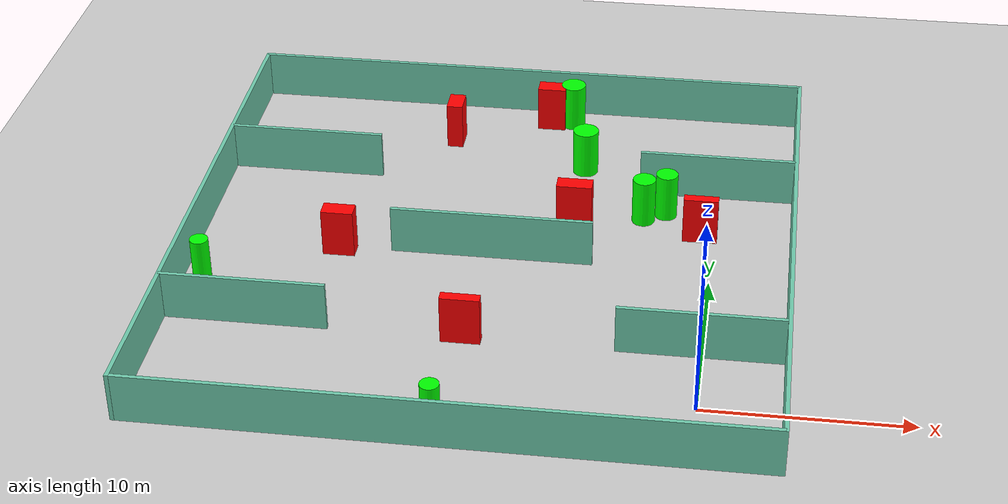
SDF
<sdf version="1.7">
 <world name="default">
  <light name="sun" type="directional">
   <pose>0 0 10 0 -0 0</pose>
   <diffuse>0.8 0.8 0.8 1</diffuse>
   <specular>0.2 0.2 0.2 1</specular>
   <attenuation>
    <range>1000</range>
    <constant>0.9</constant>
    <linear>0.01</linear>
    <quadratic>0.001</quadratic>
   </attenuation>
   <direction>-0.5 0.1 -0.9</direction>
   <spot><inner_angle>0</inner_angle><outer_angle>0</outer_angle><falloff>0</falloff></spot>
  </light>
  <model name="ground_plane">
   <static>1</static>
   <link name="link">
    <collision name="collision">
     <geometry><plane><normal>0 0 1</normal><size>100 100</size></plane></geometry>
     <surface>
      <contact><collide_bitmask>65535</collide_bitmask></contact>
      <friction><ode><mu>100</mu><mu2>50</mu2></ode></friction>
     </surface>
    </collision>
    <visual name="visual">
     <cast_shadows>0</cast_shadows>
     <geometry><plane><normal>0 0 1</normal><size>100 100</size></plane></geometry>
     <material>
      <script><uri>file://media/materials/scripts/gazebo.material</uri><name>Gazebo/Grey</name></script>
     </material>
    </visual>
   </link>
  </model>
  <gravity>0 0 -9.8</gravity>
  <magnetic_field>6e-06 2.3e-05 -4.2e-05</magnetic_field>
  <atmosphere type="adiabatic"/>
  <physics type="ode">
   <max_step_size>0.001</max_step_size>
   <real_time_factor>1</real_time_factor>
   <real_time_update_rate>1000</real_time_update_rate>
  </physics>
  <scene><ambient>0.4 0.4 0.4 1</ambient><background>0.7 0.7 0.7 1</background><shadows>1</shadows></scene>
  <spherical_coordinates>
   <surface_model>EARTH_WGS84</surface_model>
   <latitude_deg>0</latitude_deg>
   <longitude_deg>0</longitude_deg>
   <elevation>0</elevation>
   <heading_deg>0</heading_deg>
  </spherical_coordinates>
  <model name="my_base_walls">
   <link name="Wall_10">
    <collision name="Wall_10_Collision">
     <geometry><box><size>8.2 0.2 2.5</size></box></geometry>
     <pose>0 0 1.25 0 -0 0</pose>
    </collision>
    <visual name="Wall_10_Visual">
     <pose>0 0 1.25 0 -0 0</pose>
     <geometry><box><size>8.2 0.2 2.5</size></box></geometry>
     <material>
      <script><uri>file://media/materials/scripts/gazebo.material</uri><name>Gazebo/Grey</name></script>
      <ambient>0.435294 0.796078 0.67451 1</ambient>
     </material>
     <meta><layer>0</layer></meta>
    </visual>
    <pose>-11 -7 0 0 -0 0</pose>
   </link>
   <link name="Wall_12">
    <collision name="Wall_12_Collision">
     <geometry><box><size>8.2 0.2 2.5</size></box></geometry>
     <pose>0 0 1.25 0 -0 0</pose>
    </collision>
    <visual name="Wall_12_Visual">
     <pose>0 0 1.25 0 -0 0</pose>
     <geometry><box><size>8.2 0.2 2.5</size></box></geometry>
     <material>
      <script><uri>file://media/materials/scripts/gazebo.material</uri><name>Gazebo/Grey</name></script>
      <ambient>0.435294 0.796078 0.67451 1</ambient>
     </material>
     <meta><layer>0</layer></meta>
    </visual>
    <pose>-11 7 0 0 -0 0</pose>
   </link>
   <link name="Wall_14">
    <collision name="Wall_14_Collision">
     <geometry><box><size>8.2 0.2 2.5</size></box></geometry>
     <pose>0 0 1.25 0 -0 0</pose>
    </collision>
    <visual name="Wall_14_Visual">
     <pose>0 0 1.25 0 -0 0</pose>
     <geometry><box><size>8.2 0.2 2.5</size></box></geometry>
     <material>
      <script><uri>file://media/materials/scripts/gazebo.material</uri><name>Gazebo/Grey</name></script>
      <ambient>0.435294 0.796078 0.67451 1</ambient>
     </material>
     <meta><layer>0</layer></meta>
    </visual>
    <pose>11 7 0 0 -0 3.14159</pose>
   </link>
   <link name="Wall_16">
    <collision name="Wall_16_Collision">
     <geometry><box><size>10.2 0.2 2.5</size></box></geometry>
     <pose>0 0 1.25 0 -0 0</pose>
    </collision>
    <visual name="Wall_16_Visual">
     <pose>0 0 1.25 0 -0 0</pose>
     <geometry><box><size>10.2 0.2 2.5</size></box></geometry>
     <material>
      <script><uri>file://media/materials/scripts/gazebo.material</uri><name>Gazebo/Grey</name></script>
      <ambient>0.435294 0.796078 0.67451 1</ambient>
     </material>
     <meta><layer>0</layer></meta>
    </visual>
    <pose>0 0 0 0 -0 3.14159</pose>
   </link>
   <link name="Wall_2">
    <collision name="Wall_2_Collision">
     <geometry><box><size>30.2 0.2 2.5</size></box></geometry>
     <pose>0 0 1.25 0 -0 0</pose>
    </collision>
    <visual name="Wall_2_Visual">
     <pose>0 0 1.25 0 -0 0</pose>
     <geometry><box><size>30.2 0.2 2.5</size></box></geometry>
     <material>
      <script><uri>file://media/materials/scripts/gazebo.material</uri><name>Gazebo/Grey</name></script>
      <ambient>0.435294 0.796078 0.67451 1</ambient>
     </material>
     <meta><layer>0</layer></meta>
    </visual>
    <pose>0 -15 0 0 -0 3.14159</pose>
   </link>
   <link name="Wall_3">
    <collision name="Wall_3_Collision">
     <geometry><box><size>30.2 0.2 2.5</size></box></geometry>
     <pose>0 0 1.25 0 -0 0</pose>
    </collision>
    <visual name="Wall_3_Visual">
     <pose>0 0 1.25 0 -0 0</pose>
     <geometry><box><size>30.2 0.2 2.5</size></box></geometry>
     <material>
      <script><uri>file://media/materials/scripts/gazebo.material</uri><name>Gazebo/Grey</name></script>
      <ambient>0.435294 0.796078 0.67451 1</ambient>
     </material>
     <meta><layer>0</layer></meta>
    </visual>
    <pose>-15 0 0 0 -0 1.5708</pose>
   </link>
   <link name="Wall_4">
    <collision name="Wall_4_Collision">
     <geometry><box><size>30.2 0.2 2.5</size></box></geometry>
     <pose>0 0 1.25 0 -0 0</pose>
    </collision>
    <visual name="Wall_4_Visual">
     <pose>0 0 1.25 0 -0 0</pose>
     <geometry><box><size>30.2 0.2 2.5</size></box></geometry>
     <material>
      <script><uri>file://media/materials/scripts/gazebo.material</uri><name>Gazebo/Grey</name></script>
      <ambient>0.435294 0.796078 0.67451 1</ambient>
     </material>
     <meta><layer>0</layer></meta>
    </visual>
    <pose>0 15 0 0 -0 0</pose>
   </link>
   <link name="Wall_6">
    <collision name="Wall_6_Collision">
     <geometry><box><size>30.2 0.2 2.5</size></box></geometry>
     <pose>0 0 1.25 0 -0 0</pose>
    </collision>
    <visual name="Wall_6_Visual">
     <pose>0 0 1.25 0 -0 0</pose>
     <geometry><box><size>30.2 0.2 2.5</size></box></geometry>
     <material>
      <script><uri>file://media/materials/scripts/gazebo.material</uri><name>Gazebo/Grey</name></script>
      <ambient>0.435294 0.796078 0.67451 1</ambient>
     </material>
     <meta><layer>0</layer></meta>
    </visual>
    <pose>15 0 0 0 -0 1.5708</pose>
   </link>
   <link name="Wall_8">
    <collision name="Wall_8_Collision">
     <geometry><box><size>8.2 0.2 2.5</size></box></geometry>
     <pose>0 0 1.25 0 -0 0</pose>
    </collision>
    <visual name="Wall_8_Visual">
     <pose>0 0 1.25 0 -0 0</pose>
     <geometry><box><size>8.2 0.2 2.5</size></box></geometry>
     <material>
      <script><uri>file://media/materials/scripts/gazebo.material</uri><name>Gazebo/Grey</name></script>
      <ambient>0.435294 0.796078 0.67451 1</ambient>
     </material>
     <meta><layer>0</layer></meta>
    </visual>
    <pose>11 -7 0 0 -0 3.14159</pose>
   </link>
   <static>1</static>
   <pose>-11 11 0 0 -0 0</pose>
  </model>
  <model name="cylinder1">
   <static>1</static>
   <link name="link">
    <inertial>
     <mass>1</mass>
     <inertia><ixx>0.5</ixx><ixy>0</ixy><ixz>0</ixz><iyy>0.5</iyy><iyz>0</iyz><izz>1</izz></inertia>
    </inertial>
    <collision name="collision">
     <geometry><cylinder><radius>0.4600609774964405</radius><length>2.5</length></cylinder></geometry>
    </collision>
    <visual name="visual">
     <geometry><cylinder><radius>0.4600609774964405</radius><length>2.5</length></cylinder></geometry>
     <material>
      <ambient>0 1 0 1</ambient>
      <diffuse>0 1 0 1</diffuse>
      <specular>0.1 0.1 0.1 1</specular>
      <emissive>0 0 0 0</emissive>
     </material>
    </visual>
   </link>
   <pose>-11.701661170635157 -2.804720398645942 1.25 0 0 0</pose>
  </model>
  <model name="cylinder2">
   <static>1</static>
   <link name="link">
    <inertial>
     <mass>1</mass>
     <inertia><ixx>0.5</ixx><ixy>0</ixy><ixz>0</ixz><iyy>0.5</iyy><iyz>0</iyz><izz>1</izz></inertia>
    </inertial>
    <collision name="collision">
     <geometry><cylinder><radius>0.5901187204789227</radius><length>2.5</length></cylinder></geometry>
    </collision>
    <visual name="visual">
     <geometry><cylinder><radius>0.5901187204789227</radius><length>2.5</length></cylinder></geometry>
     <material>
      <ambient>0 1 0 1</ambient>
      <diffuse>0 1 0 1</diffuse>
      <specular>0.1 0.1 0.1 1</specular>
      <emissive>0 0 0 0</emissive>
     </material>
    </visual>
   </link>
   <pose>-3.6976863530265334 15.328659530621728 1.25 0 0 0</pose>
  </model>
  <model name="cylinder3">
   <static>1</static>
   <link name="link">
    <inertial>
     <mass>1</mass>
     <inertia><ixx>0.5</ixx><ixy>0</ixy><ixz>0</ixz><iyy>0.5</iyy><iyz>0</iyz><izz>1</izz></inertia>
    </inertial>
    <collision name="collision">
     <geometry><cylinder><radius>0.46068661515458764</radius><length>2.5</length></cylinder></geometry>
    </collision>
    <visual name="visual">
     <geometry><cylinder><radius>0.46068661515458764</radius><length>2.5</length></cylinder></geometry>
     <material>
      <ambient>0 1 0 1</ambient>
      <diffuse>0 1 0 1</diffuse>
      <specular>0.1 0.1 0.1 1</specular>
      <emissive>0 0 0 0</emissive>
     </material>
    </visual>
   </link>
   <pose>-24.85203379269017 7.0512928892012 1.25 0 0 0</pose>
  </model>
  <model name="cylinder4">
   <static>1</static>
   <link name="link">
    <inertial>
     <mass>1</mass>
     <inertia><ixx>0.5</ixx><ixy>0</ixy><ixz>0</ixz><iyy>0.5</iyy><iyz>0</iyz><izz>1</izz></inertia>
    </inertial>
    <collision name="collision">
     <geometry><cylinder><radius>0.653735557014797</radius><length>2.5</length></cylinder></geometry>
    </collision>
    <visual name="visual">
     <geometry><cylinder><radius>0.653735557014797</radius><length>2.5</length></cylinder></geometry>
     <material>
      <ambient>0 1 0 1</ambient>
      <diffuse>0 1 0 1</diffuse>
      <specular>0.1 0.1 0.1 1</specular>
      <emissive>0 0 0 0</emissive>
     </material>
    </visual>
   </link>
   <pose>-8.384436257905575 24.650759449493872 1.25 0 0 0</pose>
  </model>
  <model name="cylinder5">
   <static>1</static>
   <link name="link">
    <inertial>
     <mass>1</mass>
     <inertia><ixx>0.5</ixx><ixy>0</ixy><ixz>0</ixz><iyy>0.5</iyy><iyz>0</iyz><izz>1</izz></inertia>
    </inertial>
    <collision name="collision">
     <geometry><cylinder><radius>0.5666415830246572</radius><length>2.5</length></cylinder></geometry>
    </collision>
    <visual name="visual">
     <geometry><cylinder><radius>0.5666415830246572</radius><length>2.5</length></cylinder></geometry>
     <material>
      <ambient>0 1 0 1</ambient>
      <diffuse>0 1 0 1</diffuse>
      <specular>0.1 0.1 0.1 1</specular>
      <emissive>0 0 0 0</emissive>
     </material>
    </visual>
   </link>
   <pose>-2.572954634749319 15.970621066750002 1.25 0 0 0</pose>
  </model>
  <model name="cylinder6">
   <static>1</static>
   <link name="link">
    <inertial>
     <mass>1</mass>
     <inertia><ixx>0.5</ixx><ixy>0</ixy><ixz>0</ixz><iyy>0.5</iyy><iyz>0</iyz><izz>1</izz></inertia>
    </inertial>
    <collision name="collision">
     <geometry><cylinder><radius>0.672650279565712</radius><length>2.5</length></cylinder></geometry>
    </collision>
    <visual name="visual">
     <geometry><cylinder><radius>0.672650279565712</radius><length>2.5</length></cylinder></geometry>
     <material>
      <ambient>0 1 0 1</ambient>
      <diffuse>0 1 0 1</diffuse>
      <specular>0.1 0.1 0.1 1</specular>
      <emissive>0 0 0 0</emissive>
     </material>
    </visual>
   </link>
   <pose>-7.190632081054742 19.818179501322312 1.25 0 0 0</pose>
  </model>
  <model name="box1">
   <static>1</static>
   <link name="link">
    <inertial>
     <mass>1</mass>
     <inertia><ixx>0.083</ixx><ixy>0</ixy><ixz>0</ixz><iyy>0.083</iyy><iyz>0</iyz><izz>0.083</izz></inertia>
    </inertial>
    <collision name="collision">
     <geometry><box><size>0.8443752301856954 1.3577268921999204 2.5</size></box></geometry>
    </collision>
    <visual name="visual">
     <geometry><box><size>0.8443752301856954 1.3577268921999204 2.5</size></box></geometry>
     <material>
      <ambient>1 0 0 1</ambient>
      <diffuse>1 0 0 1</diffuse>
      <specular>0.1 0.1 0.1 1</specular>
      <emissive>0 0 0 0</emissive>
     </material>
    </visual>
    <sensor name="my_contact" type="contact">
     <contact><collision>box_collision</collision><topic>__default_topic__</topic></contact>
    </sensor>
   </link>
   <pose>-14.548817976665914 22.067546118192926 1.25 0 0 0</pose>
  </model>
  <model name="box2">
   <static>1</static>
   <link name="link">
    <inertial>
     <mass>1</mass>
     <inertia><ixx>0.083</ixx><ixy>0</ixy><ixz>0</ixz><iyy>0.083</iyy><iyz>0</iyz><izz>0.083</izz></inertia>
    </inertial>
    <collision name="collision">
     <geometry><box><size>1.8308090315956926 0.8597453752806665 2.5</size></box></geometry>
    </collision>
    <visual name="visual">
     <geometry><box><size>1.8308090315956926 0.8597453752806665 2.5</size></box></geometry>
     <material>
      <ambient>1 0 0 1</ambient>
      <diffuse>1 0 0 1</diffuse>
      <specular>0.1 0.1 0.1 1</specular>
      <emissive>0 0 0 0</emissive>
     </material>
    </visual>
    <sensor name="my_contact" type="contact">
     <contact><collision>box_collision</collision><topic>__default_topic__</topic></contact>
    </sensor>
   </link>
   <pose>-7.193915081587967 14.509252652407053 1.25 0 0 0</pose>
  </model>
  <model name="box3">
   <static>1</static>
   <link name="link">
    <inertial>
     <mass>1</mass>
     <inertia><ixx>0.083</ixx><ixy>0</ixy><ixz>0</ixz><iyy>0.083</iyy><iyz>0</iyz><izz>0.083</izz></inertia>
    </inertial>
    <collision name="collision">
     <geometry><box><size>1.7615856562534011 0.5130153295276425 2.5</size></box></geometry>
    </collision>
    <visual name="visual">
     <geometry><box><size>1.7615856562534011 0.5130153295276425 2.5</size></box></geometry>
     <material>
      <ambient>1 0 0 1</ambient>
      <diffuse>1 0 0 1</diffuse>
      <specular>0.1 0.1 0.1 1</specular>
      <emissive>0 0 0 0</emissive>
     </material>
    </visual>
    <sensor name="my_contact" type="contact">
     <contact><collision>box_collision</collision><topic>__default_topic__</topic></contact>
    </sensor>
   </link>
   <pose>-0.692310949489368 13.870510552428048 1.25 0 0 0</pose>
  </model>
  <model name="box4">
   <static>1</static>
   <link name="link">
    <inertial>
     <mass>1</mass>
     <inertia><ixx>0.083</ixx><ixy>0</ixy><ixz>0</ixz><iyy>0.083</iyy><iyz>0</iyz><izz>0.083</izz></inertia>
    </inertial>
    <collision name="collision">
     <geometry><box><size>1.6197650611711463 0.884717679257006 2.5</size></box></geometry>
    </collision>
    <visual name="visual">
     <geometry><box><size>1.6197650611711463 0.884717679257006 2.5</size></box></geometry>
     <material>
      <ambient>1 0 0 1</ambient>
      <diffuse>1 0 0 1</diffuse>
      <specular>0.1 0.1 0.1 1</specular>
      <emissive>0 0 0 0</emissive>
     </material>
    </visual>
    <sensor name="my_contact" type="contact">
     <contact><collision>box_collision</collision><topic>__default_topic__</topic></contact>
    </sensor>
   </link>
   <pose>-18.675879123563263 10.601457255085819 1.25 0 0 0</pose>
  </model>
  <model name="box5">
   <static>1</static>
   <link name="link">
    <inertial>
     <mass>1</mass>
     <inertia><ixx>0.083</ixx><ixy>0</ixy><ixz>0</ixz><iyy>0.083</iyy><iyz>0</iyz><izz>0.083</izz></inertia>
    </inertial>
    <collision name="collision">
     <geometry><box><size>1.5085047517836685 0.889623677850389 2.5</size></box></geometry>
    </collision>
    <visual name="visual">
     <geometry><box><size>1.5085047517836685 0.889623677850389 2.5</size></box></geometry>
     <material>
      <ambient>1 0 0 1</ambient>
      <diffuse>1 0 0 1</diffuse>
      <specular>0.1 0.1 0.1 1</specular>
      <emissive>0 0 0 0</emissive>
     </material>
    </visual>
    <sensor name="my_contact" type="contact">
     <contact><collision>box_collision</collision><topic>__default_topic__</topic></contact>
    </sensor>
   </link>
   <pose>-9.524374469941234 24.34005204756207 1.25 0 0 0</pose>
  </model>
  <model name="box6">
   <static>1</static>
   <link name="link">
    <inertial>
     <mass>1</mass>
     <inertia><ixx>0.083</ixx><ixy>0</ixy><ixz>0</ixz><iyy>0.083</iyy><iyz>0</iyz><izz>0.083</izz></inertia>
    </inertial>
    <collision name="collision">
     <geometry><box><size>1.9279389179209836 0.536918678305852 2.5</size></box></geometry>
    </collision>
    <visual name="visual">
     <geometry><box><size>1.9279389179209836 0.536918678305852 2.5</size></box></geometry>
     <material>
      <ambient>1 0 0 1</ambient>
      <diffuse>1 0 0 1</diffuse>
      <specular>0.1 0.1 0.1 1</specular>
      <emissive>0 0 0 0</emissive>
     </material>
    </visual>
    <sensor name="my_contact" type="contact">
     <contact><collision>box_collision</collision><topic>__default_topic__</topic></contact>
    </sensor>
   </link>
   <pose>-11.420285531811134 3.8734560983588944 1.25 0 0 0</pose>
  </model>
 </world>
</sdf>
